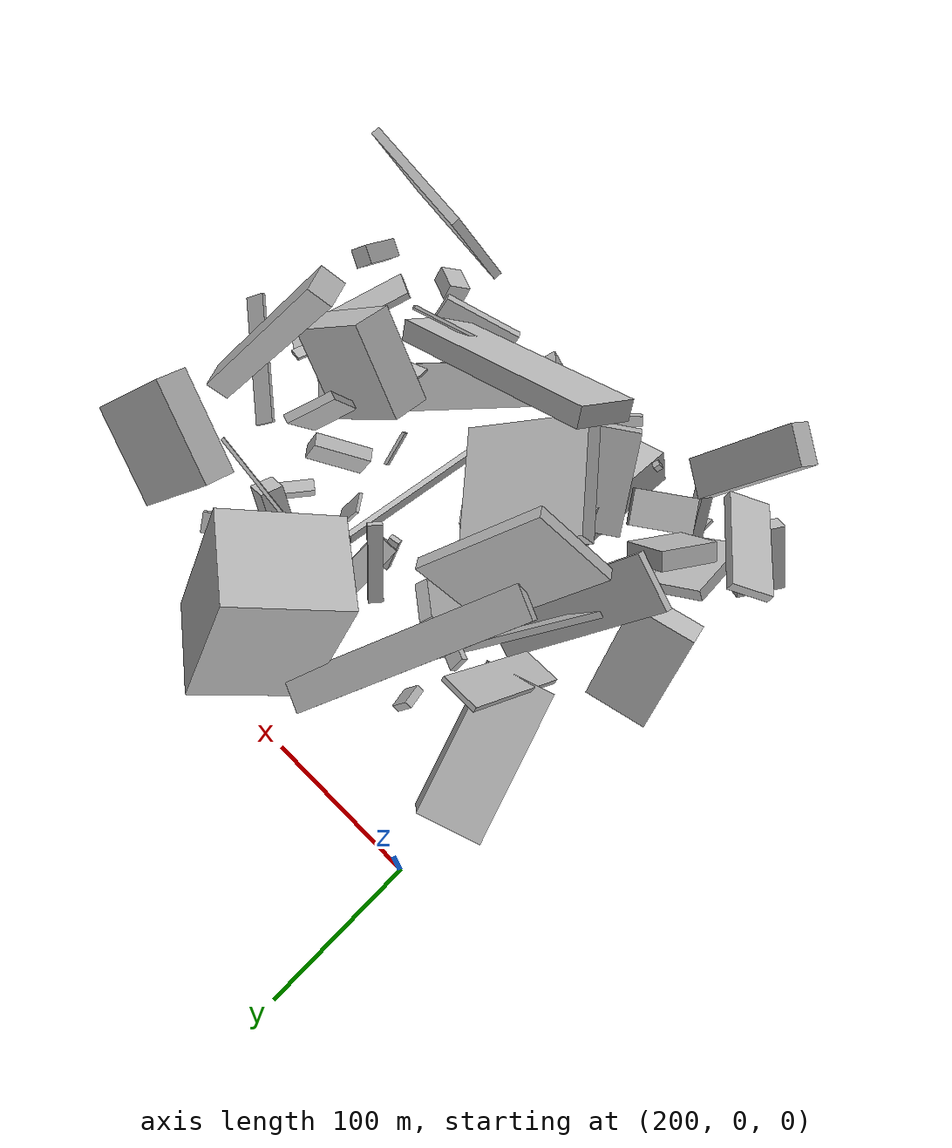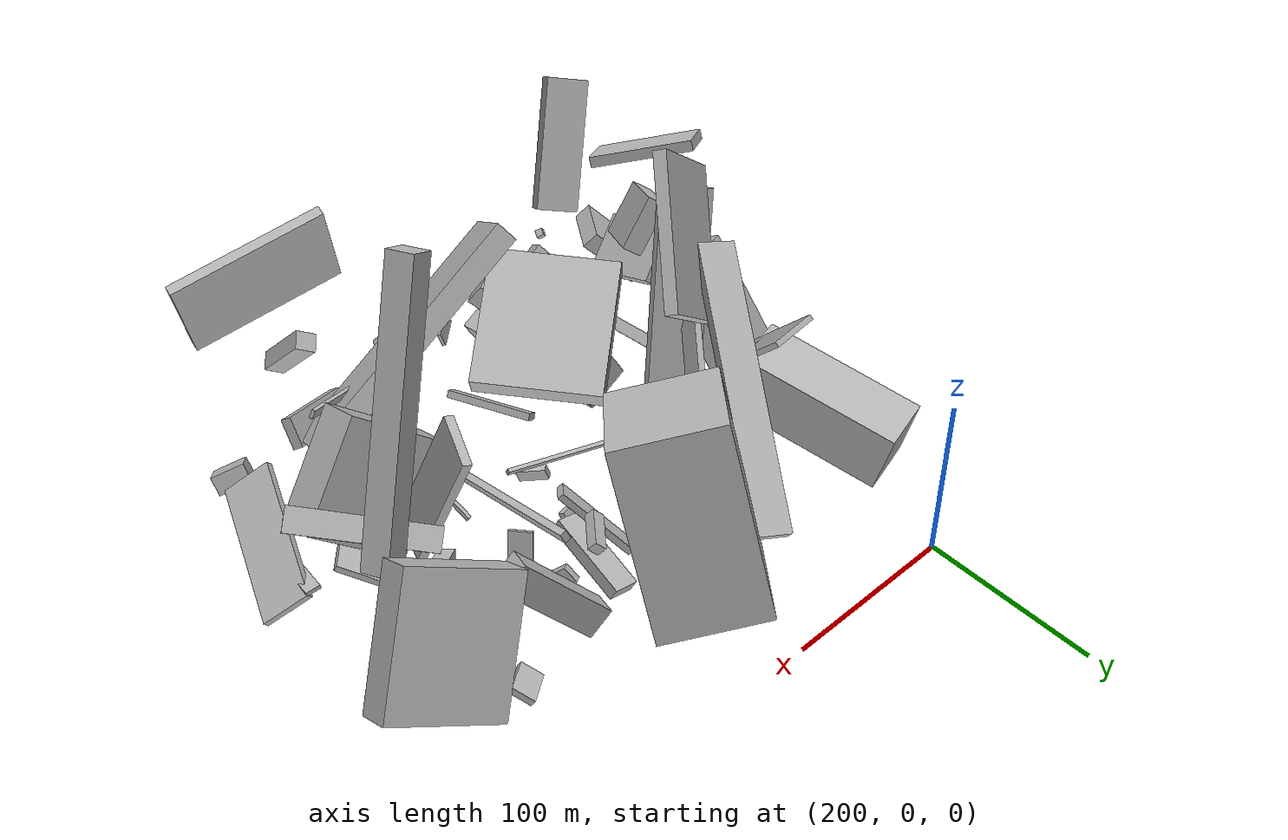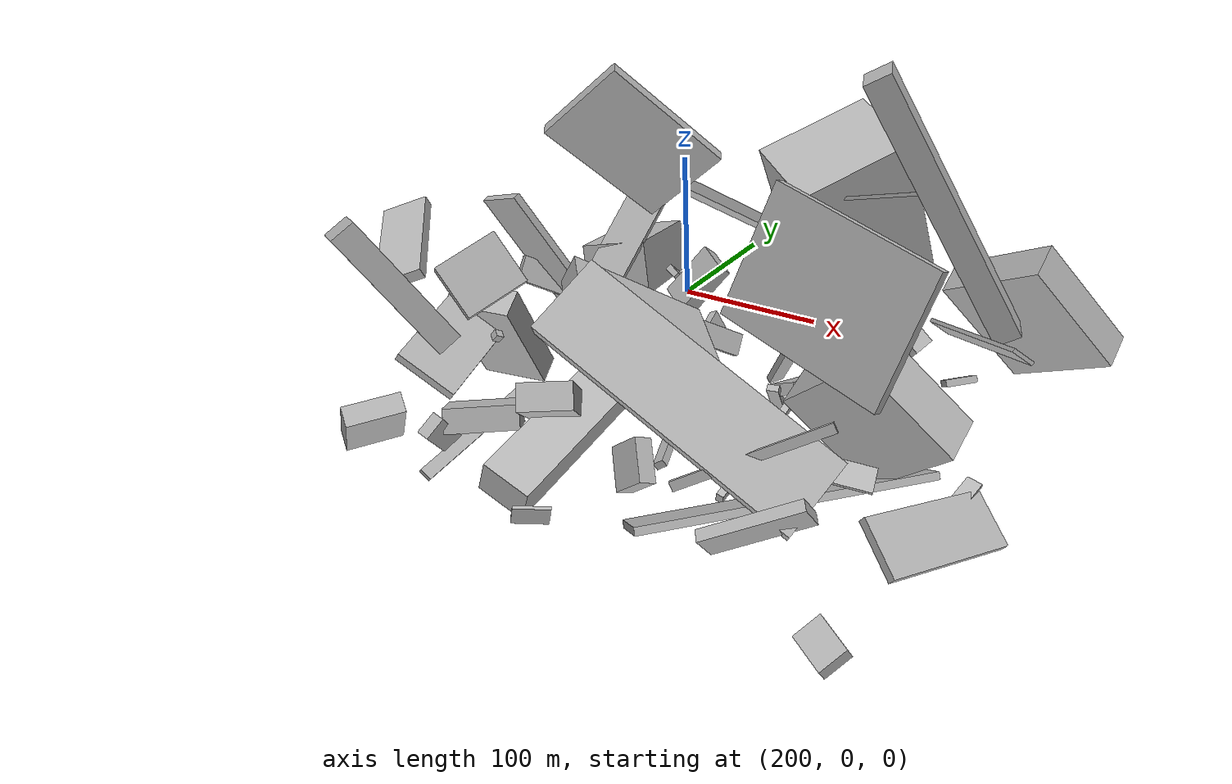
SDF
<sdf version="1.6">
 <world name="default">
  <model name="building_10">
   <static>0</static>
   <pose>460.1589038823998 -118.37427874960508 84.8922860000979 0.4953576849340349 0.12150383040471525 -1.203732286622869</pose>
   <link name="link">
    <gravity>0</gravity>
    <pose>0 0 75.0 0 0 0</pose>
    <collision name="collision"><geometry><box><size>15 14 150</size></box></geometry></collision>
    <visual name="visual">
     <cast_shadows>0</cast_shadows>
     <geometry><box><size>15 14 150</size></box></geometry>
     <material>
      <script>
       <uri>model://HANNAS_wall/materials/scripts</uri>
       <uri>model://HANNAS_wall/materials/textures</uri>
       <name>vrc/HANNAS_wall</name>
      </script>
     </material>
    </visual>
   </link>
  </model>
  <model name="building_11">
   <static>0</static>
   <pose>337.3567182355807 -128.44196132347136 14.974710355389043 -1.0140477747053518 -0.029069397226781417 0.16916619876943415</pose>
   <link name="link">
    <gravity>0</gravity>
    <pose>0 0 2.0 0 0 0</pose>
    <collision name="collision"><geometry><box><size>7 24 4</size></box></geometry></collision>
    <visual name="visual">
     <cast_shadows>0</cast_shadows>
     <geometry><box><size>7 24 4</size></box></geometry>
     <material>
      <script>
       <uri>model://HANNAS_wall/materials/scripts</uri>
       <uri>model://HANNAS_wall/materials/textures</uri>
       <name>vrc/HANNAS_wall</name>
      </script>
     </material>
    </visual>
   </link>
  </model>
  <model name="building_17">
   <static>0</static>
   <pose>434.11143040964225 -63.23655594382947 62.417099421793985 -0.8089950280004476 -0.8640775364685063 -2.533135403056775</pose>
   <link name="link">
    <gravity>0</gravity>
    <pose>0 0 31.5 0 0 0</pose>
    <collision name="collision"><geometry><box><size>71 20 63</size></box></geometry></collision>
    <visual name="visual">
     <cast_shadows>0</cast_shadows>
     <geometry><box><size>71 20 63</size></box></geometry>
     <material>
      <script>
       <uri>model://HANNAS_wall/materials/scripts</uri>
       <uri>model://HANNAS_wall/materials/textures</uri>
       <name>vrc/HANNAS_wall</name>
      </script>
     </material>
    </visual>
   </link>
  </model>
  <model name="building_20">
   <static>0</static>
   <pose>333.15024526978425 -112.29790113569715 32.963723524804394 2.294804269821696 -0.13437746674991374 0.8997554417228535</pose>
   <link name="link">
    <gravity>0</gravity>
    <pose>0 0 2.0 0 0 0</pose>
    <collision name="collision"><geometry><box><size>9 53 4</size></box></geometry></collision>
    <visual name="visual">
     <cast_shadows>0</cast_shadows>
     <geometry><box><size>9 53 4</size></box></geometry>
     <material>
      <script>
       <uri>model://HANNAS_wall/materials/scripts</uri>
       <uri>model://HANNAS_wall/materials/textures</uri>
       <name>vrc/HANNAS_wall</name>
      </script>
     </material>
    </visual>
   </link>
  </model>
  <model name="building_28">
   <static>0</static>
   <pose>235.4168713873661 -254.85683032448424 34.52441124242624 -0.36384586400319685 -0.01920707055681753 0.6055306552748823</pose>
   <link name="link">
    <gravity>0</gravity>
    <pose>0 0 6.5 0 0 0</pose>
    <collision name="collision"><geometry><box><size>38 22 13</size></box></geometry></collision>
    <visual name="visual">
     <cast_shadows>0</cast_shadows>
     <geometry><box><size>38 22 13</size></box></geometry>
     <material>
      <script>
       <uri>model://HANNAS_wall/materials/scripts</uri>
       <uri>model://HANNAS_wall/materials/textures</uri>
       <name>vrc/HANNAS_wall</name>
      </script>
     </material>
    </visual>
   </link>
  </model>
  <model name="building_31">
   <static>0</static>
   <pose>317.9822952073156 -175.98219931909975 65.68136350137047 0.08949255306956216 1.0632707284871563 -2.366867553119166</pose>
   <link name="link">
    <gravity>0</gravity>
    <pose>0 0 37.5 0 0 0</pose>
    <collision name="collision"><geometry><box><size>16 70 75</size></box></geometry></collision>
    <visual name="visual">
     <cast_shadows>0</cast_shadows>
     <geometry><box><size>16 70 75</size></box></geometry>
     <material>
      <script>
       <uri>model://HANNAS_wall/materials/scripts</uri>
       <uri>model://HANNAS_wall/materials/textures</uri>
       <name>vrc/HANNAS_wall</name>
      </script>
     </material>
    </visual>
   </link>
  </model>
  <model name="building_35">
   <static>0</static>
   <pose>211.60376427736364 -220.27905017314177 101.85397670175263 2.5157299335138896 -0.8857009079345143 -3.1245915232860106</pose>
   <link name="link">
    <gravity>0</gravity>
    <pose>0 0 5.5 0 0 0</pose>
    <collision name="collision"><geometry><box><size>31 36 11</size></box></geometry></collision>
    <visual name="visual">
     <cast_shadows>0</cast_shadows>
     <geometry><box><size>31 36 11</size></box></geometry>
     <material>
      <script>
       <uri>model://HANNAS_wall/materials/scripts</uri>
       <uri>model://HANNAS_wall/materials/textures</uri>
       <name>vrc/HANNAS_wall</name>
      </script>
     </material>
    </visual>
   </link>
  </model>
  <model name="building_38">
   <static>0</static>
   <pose>350.74937876614905 -162.99741595947287 20.990769054794832 1.8768345951856005 -0.2834568657458699 1.5121940201019815</pose>
   <link name="link">
    <gravity>0</gravity>
    <pose>0 0 2.0 0 0 0</pose>
    <collision name="collision"><geometry><box><size>106 6 4</size></box></geometry></collision>
    <visual name="visual">
     <cast_shadows>0</cast_shadows>
     <geometry><box><size>106 6 4</size></box></geometry>
     <material>
      <script>
       <uri>model://HANNAS_wall/materials/scripts</uri>
       <uri>model://HANNAS_wall/materials/textures</uri>
       <name>vrc/HANNAS_wall</name>
      </script>
     </material>
    </visual>
   </link>
  </model>
  <model name="building_43">
   <static>0</static>
   <pose>355.7081413751066 -226.23785685120248 91.65332476563502 -2.2603713731433333 -0.4976184332705186 -3.1124423480379075</pose>
   <link name="link">
    <gravity>0</gravity>
    <pose>0 0 21.0 0 0 0</pose>
    <collision name="collision"><geometry><box><size>150 13 42</size></box></geometry></collision>
    <visual name="visual">
     <cast_shadows>0</cast_shadows>
     <geometry><box><size>150 13 42</size></box></geometry>
     <material>
      <script>
       <uri>model://HANNAS_wall/materials/scripts</uri>
       <uri>model://HANNAS_wall/materials/textures</uri>
       <name>vrc/HANNAS_wall</name>
      </script>
     </material>
    </visual>
   </link>
  </model>
  <model name="building_47">
   <static>0</static>
   <pose>215.18493710199056 -271.1913612932907 27.47882116841408 0.8415555651585404 -0.47683476521809753 -3.0370207028058096</pose>
   <link name="link">
    <gravity>0</gravity>
    <pose>0 0 6.0 0 0 0</pose>
    <collision name="collision"><geometry><box><size>6 56 12</size></box></geometry></collision>
    <visual name="visual">
     <cast_shadows>0</cast_shadows>
     <geometry><box><size>6 56 12</size></box></geometry>
     <material>
      <script>
       <uri>model://HANNAS_wall/materials/scripts</uri>
       <uri>model://HANNAS_wall/materials/textures</uri>
       <name>vrc/HANNAS_wall</name>
      </script>
     </material>
    </visual>
   </link>
  </model>
  <model name="building_48">
   <static>0</static>
   <pose>212.4891290769429 -77.7635215359557 41.445633553725614 -0.2246477361260205 -0.1491714450515656 0.3354588442186512</pose>
   <link name="link">
    <gravity>0</gravity>
    <pose>0 0 16.0 0 0 0</pose>
    <collision name="collision"><geometry><box><size>38 89 32</size></box></geometry></collision>
    <visual name="visual">
     <cast_shadows>0</cast_shadows>
     <geometry><box><size>38 89 32</size></box></geometry>
     <material>
      <script>
       <uri>model://HANNAS_wall/materials/scripts</uri>
       <uri>model://HANNAS_wall/materials/textures</uri>
       <name>vrc/HANNAS_wall</name>
      </script>
     </material>
    </visual>
   </link>
  </model>
  <model name="building_49">
   <static>0</static>
   <pose>245.2291191876191 -126.56439494210305 57.91796113523763 -2.68325481329737 -0.5180728698786812 -2.243137083573296</pose>
   <link name="link">
    <gravity>0</gravity>
    <pose>0 0 7.0 0 0 0</pose>
    <collision name="collision"><geometry><box><size>150 4 14</size></box></geometry></collision>
    <visual name="visual">
     <cast_shadows>0</cast_shadows>
     <geometry><box><size>150 4 14</size></box></geometry>
     <material>
      <script>
       <uri>model://HANNAS_wall/materials/scripts</uri>
       <uri>model://HANNAS_wall/materials/textures</uri>
       <name>vrc/HANNAS_wall</name>
      </script>
     </material>
    </visual>
   </link>
  </model>
  <model name="building_50">
   <static>0</static>
   <pose>247.29898616097603 -253.99254294254627 90.68106334943234 -2.4298114748262445 -0.8616706706315591 0.3567352662043618</pose>
   <link name="link">
    <gravity>0</gravity>
    <pose>0 0 2.0 0 0 0</pose>
    <collision name="collision"><geometry><box><size>4 4 4</size></box></geometry></collision>
    <visual name="visual">
     <cast_shadows>0</cast_shadows>
     <geometry><box><size>4 4 4</size></box></geometry>
     <material>
      <script>
       <uri>model://HANNAS_wall/materials/scripts</uri>
       <uri>model://HANNAS_wall/materials/textures</uri>
       <name>vrc/HANNAS_wall</name>
      </script>
     </material>
    </visual>
   </link>
  </model>
  <model name="building_52">
   <static>0</static>
   <pose>318.7343422818073 -66.29008827937255 88.95688643740255 0.5230986797730359 1.1464093705336198 1.410003238743652</pose>
   <link name="link">
    <gravity>0</gravity>
    <pose>0 0 34.5 0 0 0</pose>
    <collision name="collision"><geometry><box><size>99 56 69</size></box></geometry></collision>
    <visual name="visual">
     <cast_shadows>0</cast_shadows>
     <geometry><box><size>99 56 69</size></box></geometry>
     <material>
      <script>
       <uri>model://HANNAS_wall/materials/scripts</uri>
       <uri>model://HANNAS_wall/materials/textures</uri>
       <name>vrc/HANNAS_wall</name>
      </script>
     </material>
    </visual>
   </link>
  </model>
  <model name="building_61">
   <static>0</static>
   <pose>200.9102274237913 -173.73302068580915 40.64430081645144 1.5047500270799214 -1.0065464622510234 -1.307111812371574</pose>
   <link name="link">
    <gravity>0</gravity>
    <pose>0 0 19.5 0 0 0</pose>
    <collision name="collision"><geometry><box><size>75 16 39</size></box></geometry></collision>
    <visual name="visual">
     <cast_shadows>0</cast_shadows>
     <geometry><box><size>75 16 39</size></box></geometry>
     <material>
      <script>
       <uri>model://HANNAS_wall/materials/scripts</uri>
       <uri>model://HANNAS_wall/materials/textures</uri>
       <name>vrc/HANNAS_wall</name>
      </script>
     </material>
    </visual>
   </link>
  </model>
  <model name="building_62">
   <static>0</static>
   <pose>442.2098358875446 -193.98515217330163 83.47265686796575 2.6938296307254874 -0.7813027499943849 -2.8380350246862163</pose>
   <link name="link">
    <gravity>0</gravity>
    <pose>0 0 30.0 0 0 0</pose>
    <collision name="collision"><geometry><box><size>62 25 60</size></box></geometry></collision>
    <visual name="visual">
     <cast_shadows>0</cast_shadows>
     <geometry><box><size>62 25 60</size></box></geometry>
     <material>
      <script>
       <uri>model://HANNAS_wall/materials/scripts</uri>
       <uri>model://HANNAS_wall/materials/textures</uri>
       <name>vrc/HANNAS_wall</name>
      </script>
     </material>
    </visual>
   </link>
  </model>
  <model name="building_77">
   <static>0</static>
   <pose>280.5271361039097 -229.9597543300415 26.435822574598006 -0.46021683123233476 1.0820189600171166 2.6968286004133035</pose>
   <link name="link">
    <gravity>0</gravity>
    <pose>0 0 13.5 0 0 0</pose>
    <collision name="collision"><geometry><box><size>22 101 27</size></box></geometry></collision>
    <visual name="visual">
     <cast_shadows>0</cast_shadows>
     <geometry><box><size>22 101 27</size></box></geometry>
     <material>
      <script>
       <uri>model://HANNAS_wall/materials/scripts</uri>
       <uri>model://HANNAS_wall/materials/textures</uri>
       <name>vrc/HANNAS_wall</name>
      </script>
     </material>
    </visual>
   </link>
  </model>
  <model name="building_84">
   <static>0</static>
   <pose>244.34190300198725 -168.36143782823825 71.7766488303553 2.21729381559508 -1.047114802332166 -2.452151538049546</pose>
   <link name="link">
    <gravity>0</gravity>
    <pose>0 0 16.5 0 0 0</pose>
    <collision name="collision"><geometry><box><size>150 4 33</size></box></geometry></collision>
    <visual name="visual">
     <cast_shadows>0</cast_shadows>
     <geometry><box><size>150 4 33</size></box></geometry>
     <material>
      <script>
       <uri>model://HANNAS_wall/materials/scripts</uri>
       <uri>model://HANNAS_wall/materials/textures</uri>
       <name>vrc/HANNAS_wall</name>
      </script>
     </material>
    </visual>
   </link>
  </model>
  <model name="building_89">
   <static>0</static>
   <pose>260.725664843806 -72.84100023236724 104.545054607556 -1.3204204983094419 -0.5610882045661703 -2.118408202622135</pose>
   <link name="link">
    <gravity>0</gravity>
    <pose>0 0 10.0 0 0 0</pose>
    <collision name="collision"><geometry><box><size>150 6 20</size></box></geometry></collision>
    <visual name="visual">
     <cast_shadows>0</cast_shadows>
     <geometry><box><size>150 6 20</size></box></geometry>
     <material>
      <script>
       <uri>model://HANNAS_wall/materials/scripts</uri>
       <uri>model://HANNAS_wall/materials/textures</uri>
       <name>vrc/HANNAS_wall</name>
      </script>
     </material>
    </visual>
   </link>
  </model>
  <model name="building_92">
   <static>0</static>
   <pose>320.22706287352025 -212.35248156447483 36.90239027115036 2.5389613801580104 -0.1098347615020814 1.8934259265785665</pose>
   <link name="link">
    <gravity>0</gravity>
    <pose>0 0 2.0 0 0 0</pose>
    <collision name="collision"><geometry><box><size>52 6 4</size></box></geometry></collision>
    <visual name="visual">
     <cast_shadows>0</cast_shadows>
     <geometry><box><size>52 6 4</size></box></geometry>
     <material>
      <script>
       <uri>model://HANNAS_wall/materials/scripts</uri>
       <uri>model://HANNAS_wall/materials/textures</uri>
       <name>vrc/HANNAS_wall</name>
      </script>
     </material>
    </visual>
   </link>
  </model>
  <model name="building_99">
   <static>0</static>
   <pose>380.911453621354 -214.32253185496637 18.43099594032138 1.0690812252482276 0.00394586074833387 0.817220577300553</pose>
   <link name="link">
    <gravity>0</gravity>
    <pose>0 0 14.5 0 0 0</pose>
    <collision name="collision"><geometry><box><size>150 4 29</size></box></geometry></collision>
    <visual name="visual">
     <cast_shadows>0</cast_shadows>
     <geometry><box><size>150 4 29</size></box></geometry>
     <material>
      <script>
       <uri>model://HANNAS_wall/materials/scripts</uri>
       <uri>model://HANNAS_wall/materials/textures</uri>
       <name>vrc/HANNAS_wall</name>
      </script>
     </material>
    </visual>
   </link>
  </model>
  <model name="building_101">
   <static>0</static>
   <pose>208.93288259155446 -228.6883443920047 50.87617227311907 0.5088292097565456 -0.8053347149819384 -0.32761566895497757</pose>
   <link name="link">
    <gravity>0</gravity>
    <pose>0 0 17.5 0 0 0</pose>
    <collision name="collision"><geometry><box><size>7 46 35</size></box></geometry></collision>
    <visual name="visual">
     <cast_shadows>0</cast_shadows>
     <geometry><box><size>7 46 35</size></box></geometry>
     <material>
      <script>
       <uri>model://HANNAS_wall/materials/scripts</uri>
       <uri>model://HANNAS_wall/materials/textures</uri>
       <name>vrc/HANNAS_wall</name>
      </script>
     </material>
    </visual>
   </link>
  </model>
  <model name="building_109">
   <static>0</static>
   <pose>373.3770741221309 -127.4637251876629 18.6794212886369 1.9851911082569653 0.07983012994358722 -0.9564743889754774</pose>
   <link name="link">
    <gravity>0</gravity>
    <pose>0 0 1.0 0 0 0</pose>
    <collision name="collision"><geometry><box><size>13 32 2</size></box></geometry></collision>
    <visual name="visual">
     <cast_shadows>0</cast_shadows>
     <geometry><box><size>13 32 2</size></box></geometry>
     <material>
      <script>
       <uri>model://HANNAS_wall/materials/scripts</uri>
       <uri>model://HANNAS_wall/materials/textures</uri>
       <name>vrc/HANNAS_wall</name>
      </script>
     </material>
    </visual>
   </link>
  </model>
  <model name="building_110">
   <static>0</static>
   <pose>189.3494798930816 -233.90068318987755 123.8378949537716 -2.413807583799854 1.1196567251162641 1.3497812016183395</pose>
   <link name="link">
    <gravity>0</gravity>
    <pose>0 0 12.0 0 0 0</pose>
    <collision name="collision"><geometry><box><size>6 59 24</size></box></geometry></collision>
    <visual name="visual">
     <cast_shadows>0</cast_shadows>
     <geometry><box><size>6 59 24</size></box></geometry>
     <material>
      <script>
       <uri>model://HANNAS_wall/materials/scripts</uri>
       <uri>model://HANNAS_wall/materials/textures</uri>
       <name>vrc/HANNAS_wall</name>
      </script>
     </material>
    </visual>
   </link>
  </model>
  <model name="building_117">
   <static>0</static>
   <pose>410.1704699382176 -85.08262220811868 139.7395193428975 1.8405389211374017 -0.21448771616415635 -1.72395791164219</pose>
   <link name="link">
    <gravity>0</gravity>
    <pose>0 0 40.0 0 0 0</pose>
    <collision name="collision"><geometry><box><size>2 2 80</size></box></geometry></collision>
    <visual name="visual">
     <cast_shadows>0</cast_shadows>
     <geometry><box><size>2 2 80</size></box></geometry>
     <material>
      <script>
       <uri>model://HANNAS_wall/materials/scripts</uri>
       <uri>model://HANNAS_wall/materials/textures</uri>
       <name>vrc/HANNAS_wall</name>
      </script>
     </material>
    </visual>
   </link>
  </model>
  <model name="building_125">
   <static>0</static>
   <pose>291.0878081388329 -288.7931266781011 23.455761138645848 -2.468119949734481 1.296719110242469 2.92131677258619</pose>
   <link name="link">
    <gravity>0</gravity>
    <pose>0 0 1.0 0 0 0</pose>
    <collision name="collision"><geometry><box><size>10 18 2</size></box></geometry></collision>
    <visual name="visual">
     <cast_shadows>0</cast_shadows>
     <geometry><box><size>10 18 2</size></box></geometry>
     <material>
      <script>
       <uri>model://HANNAS_wall/materials/scripts</uri>
       <uri>model://HANNAS_wall/materials/textures</uri>
       <name>vrc/HANNAS_wall</name>
      </script>
     </material>
    </visual>
   </link>
  </model>
  <model name="building_136">
   <static>0</static>
   <pose>449.2815757519602 -252.64814022709473 38.86930768673807 1.9775527400731718 0.8932343174269934 3.080754585479773</pose>
   <link name="link">
    <gravity>0</gravity>
    <pose>0 0 40.0 0 0 0</pose>
    <collision name="collision"><geometry><box><size>4 29 80</size></box></geometry></collision>
    <visual name="visual">
     <cast_shadows>0</cast_shadows>
     <geometry><box><size>4 29 80</size></box></geometry>
     <material>
      <script>
       <uri>model://HANNAS_wall/materials/scripts</uri>
       <uri>model://HANNAS_wall/materials/textures</uri>
       <name>vrc/HANNAS_wall</name>
      </script>
     </material>
    </visual>
   </link>
  </model>
  <model name="building_140">
   <static>0</static>
   <pose>225.14962807315837 -102.90028612967566 89.05644045869357 0.29493797088226326 -0.839328732036599 1.3148853432662513</pose>
   <link name="link">
    <gravity>0</gravity>
    <pose>0 0 1.5 0 0 0</pose>
    <collision name="collision"><geometry><box><size>80 24 3</size></box></geometry></collision>
    <visual name="visual">
     <cast_shadows>0</cast_shadows>
     <geometry><box><size>80 24 3</size></box></geometry>
     <material>
      <script>
       <uri>model://HANNAS_wall/materials/scripts</uri>
       <uri>model://HANNAS_wall/materials/textures</uri>
       <name>vrc/HANNAS_wall</name>
      </script>
     </material>
    </visual>
   </link>
  </model>
  <model name="building_146">
   <static>0</static>
   <pose>414.73256315072655 -264.1627639766887 126.25105230959478 -0.2188273654402538 -0.34099935820905325 -1.7172369734844972</pose>
   <link name="link">
    <gravity>0</gravity>
    <pose>0 0 30.0 0 0 0</pose>
    <collision name="collision"><geometry><box><size>5 80 60</size></box></geometry></collision>
    <visual name="visual">
     <cast_shadows>0</cast_shadows>
     <geometry><box><size>5 80 60</size></box></geometry>
     <material>
      <script>
       <uri>model://HANNAS_wall/materials/scripts</uri>
       <uri>model://HANNAS_wall/materials/textures</uri>
       <name>vrc/HANNAS_wall</name>
      </script>
     </material>
    </visual>
   </link>
  </model>
  <model name="building_147">
   <static>0</static>
   <pose>405.4929641702719 -154.5167294639753 18.57505729771713 -2.735737354694274 0.10841578608229505 -0.8840340368185594</pose>
   <link name="link">
    <gravity>0</gravity>
    <pose>0 0 9.5 0 0 0</pose>
    <collision name="collision"><geometry><box><size>9 37 19</size></box></geometry></collision>
    <visual name="visual">
     <cast_shadows>0</cast_shadows>
     <geometry><box><size>9 37 19</size></box></geometry>
     <material>
      <script>
       <uri>model://HANNAS_wall/materials/scripts</uri>
       <uri>model://HANNAS_wall/materials/textures</uri>
       <name>vrc/HANNAS_wall</name>
      </script>
     </material>
    </visual>
   </link>
  </model>
  <model name="building_152">
   <static>0</static>
   <pose>287.2871676406291 -121.6690813711336 69.24595631852546 -1.3652841876755313 0.7134322438633618 1.0393939513840176</pose>
   <link name="link">
    <gravity>0</gravity>
    <pose>0 0 11.5 0 0 0</pose>
    <collision name="collision"><geometry><box><size>9 34 23</size></box></geometry></collision>
    <visual name="visual">
     <cast_shadows>0</cast_shadows>
     <geometry><box><size>9 34 23</size></box></geometry>
     <material>
      <script>
       <uri>model://HANNAS_wall/materials/scripts</uri>
       <uri>model://HANNAS_wall/materials/textures</uri>
       <name>vrc/HANNAS_wall</name>
      </script>
     </material>
    </visual>
   </link>
  </model>
  <model name="building_153">
   <static>0</static>
   <pose>279.5868036140089 -223.26594215084552 86.36456683612614 -2.7239069145814025 0.7763298759437856 -2.636738384228357</pose>
   <link name="link">
    <gravity>0</gravity>
    <pose>0 0 5.0 0 0 0</pose>
    <collision name="collision"><geometry><box><size>12 15 10</size></box></geometry></collision>
    <visual name="visual">
     <cast_shadows>0</cast_shadows>
     <geometry><box><size>12 15 10</size></box></geometry>
     <material>
      <script>
       <uri>model://HANNAS_wall/materials/scripts</uri>
       <uri>model://HANNAS_wall/materials/textures</uri>
       <name>vrc/HANNAS_wall</name>
      </script>
     </material>
    </visual>
   </link>
  </model>
  <model name="building_156">
   <static>0</static>
   <pose>267.6418408713831 -70.91517537222309 18.346345175938712 1.9709376357255821 0.19784956948103993 -1.3757708798279347</pose>
   <link name="link">
    <gravity>0</gravity>
    <pose>0 0 2.5 0 0 0</pose>
    <collision name="collision"><geometry><box><size>13 19 5</size></box></geometry></collision>
    <visual name="visual">
     <cast_shadows>0</cast_shadows>
     <geometry><box><size>13 19 5</size></box></geometry>
     <material>
      <script>
       <uri>model://HANNAS_wall/materials/scripts</uri>
       <uri>model://HANNAS_wall/materials/textures</uri>
       <name>vrc/HANNAS_wall</name>
      </script>
     </material>
    </visual>
   </link>
  </model>
  <model name="building_158">
   <static>0</static>
   <pose>329.81868289927615 -267.89528603912163 48.512691341317804 -0.5780775207685969 0.7541461604437004 -0.8692349804844707</pose>
   <link name="link">
    <gravity>0</gravity>
    <pose>0 0 9.0 0 0 0</pose>
    <collision name="collision"><geometry><box><size>21 9 18</size></box></geometry></collision>
    <visual name="visual">
     <cast_shadows>0</cast_shadows>
     <geometry><box><size>21 9 18</size></box></geometry>
     <material>
      <script>
       <uri>model://HANNAS_wall/materials/scripts</uri>
       <uri>model://HANNAS_wall/materials/textures</uri>
       <name>vrc/HANNAS_wall</name>
      </script>
     </material>
    </visual>
   </link>
  </model>
  <model name="building_166">
   <static>0</static>
   <pose>232.45141431393952 -141.18465936207 137.83967684268134 -0.45809020107708237 -0.7491240944061937 -2.229161635064339</pose>
   <link name="link">
    <gravity>0</gravity>
    <pose>0 0 27.0 0 0 0</pose>
    <collision name="collision"><geometry><box><size>80 7 54</size></box></geometry></collision>
    <visual name="visual">
     <cast_shadows>0</cast_shadows>
     <geometry><box><size>80 7 54</size></box></geometry>
     <material>
      <script>
       <uri>model://HANNAS_wall/materials/scripts</uri>
       <uri>model://HANNAS_wall/materials/textures</uri>
       <name>vrc/HANNAS_wall</name>
      </script>
     </material>
    </visual>
   </link>
  </model>
  <model name="building_176">
   <static>0</static>
   <pose>353.912015487791 -264.39546690677946 45.61929384404063 -1.1295302715417508 -0.24631573228398373 -1.2104357430718784</pose>
   <link name="link">
    <gravity>0</gravity>
    <pose>0 0 40.0 0 0 0</pose>
    <collision name="collision"><geometry><box><size>2 5 80</size></box></geometry></collision>
    <visual name="visual">
     <cast_shadows>0</cast_shadows>
     <geometry><box><size>2 5 80</size></box></geometry>
     <material>
      <script>
       <uri>model://HANNAS_wall/materials/scripts</uri>
       <uri>model://HANNAS_wall/materials/textures</uri>
       <name>vrc/HANNAS_wall</name>
      </script>
     </material>
    </visual>
   </link>
  </model>
  <model name="building_182">
   <static>0</static>
   <pose>384.757821133791 -93.32251795567214 35.792251811439044 1.3199742497294986 -0.6986104676257516 3.039856276194207</pose>
   <link name="link">
    <gravity>0</gravity>
    <pose>0 0 7.0 0 0 0</pose>
    <collision name="collision"><geometry><box><size>17 62 14</size></box></geometry></collision>
    <visual name="visual">
     <cast_shadows>0</cast_shadows>
     <geometry><box><size>17 62 14</size></box></geometry>
     <material>
      <script>
       <uri>model://HANNAS_wall/materials/scripts</uri>
       <uri>model://HANNAS_wall/materials/textures</uri>
       <name>vrc/HANNAS_wall</name>
      </script>
     </material>
    </visual>
   </link>
  </model>
  <model name="building_186">
   <static>0</static>
   <pose>266.58747893749165 -237.49479715576445 58.50452231603069 2.527397417235398 -0.005324374064252108 0.5818382885486832</pose>
   <link name="link">
    <gravity>0</gravity>
    <pose>0 0 7.0 0 0 0</pose>
    <collision name="collision"><geometry><box><size>27 63 14</size></box></geometry></collision>
    <visual name="visual">
     <cast_shadows>0</cast_shadows>
     <geometry><box><size>27 63 14</size></box></geometry>
     <material>
      <script>
       <uri>model://HANNAS_wall/materials/scripts</uri>
       <uri>model://HANNAS_wall/materials/textures</uri>
       <name>vrc/HANNAS_wall</name>
      </script>
     </material>
    </visual>
   </link>
  </model>
  <model name="building_188">
   <static>0</static>
   <pose>352.3148130261338 -89.56056580248385 52.18562549907406 0.800385976160919 0.036525562152169996 0.8944927806602351</pose>
   <link name="link">
    <gravity>0</gravity>
    <pose>0 0 3.5 0 0 0</pose>
    <collision name="collision"><geometry><box><size>22 6 7</size></box></geometry></collision>
    <visual name="visual">
     <cast_shadows>0</cast_shadows>
     <geometry><box><size>22 6 7</size></box></geometry>
     <material>
      <script>
       <uri>model://HANNAS_wall/materials/scripts</uri>
       <uri>model://HANNAS_wall/materials/textures</uri>
       <name>vrc/HANNAS_wall</name>
      </script>
     </material>
    </visual>
   </link>
  </model>
  <model name="building_199">
   <static>0</static>
   <pose>225.98741351184913 -265.30427694292723 87.37741415822177 -0.5568529490042251 0.2199550169626228 2.5614939123412315</pose>
   <link name="link">
    <gravity>0</gravity>
    <pose>0 0 36.5 0 0 0</pose>
    <collision name="collision"><geometry><box><size>23 13 73</size></box></geometry></collision>
    <visual name="visual">
     <cast_shadows>0</cast_shadows>
     <geometry><box><size>23 13 73</size></box></geometry>
     <material>
      <script>
       <uri>model://HANNAS_wall/materials/scripts</uri>
       <uri>model://HANNAS_wall/materials/textures</uri>
       <name>vrc/HANNAS_wall</name>
      </script>
     </material>
    </visual>
   </link>
  </model>
  <model name="building_203">
   <static>0</static>
   <pose>444.98041982905164 -281.0155998135211 12.676293733304997 -2.1201341763396915 -0.3078308564666747 2.684431427243636</pose>
   <link name="link">
    <gravity>0</gravity>
    <pose>0 0 7.5 0 0 0</pose>
    <collision name="collision"><geometry><box><size>19 11 15</size></box></geometry></collision>
    <visual name="visual">
     <cast_shadows>0</cast_shadows>
     <geometry><box><size>19 11 15</size></box></geometry>
     <material>
      <script>
       <uri>model://HANNAS_wall/materials/scripts</uri>
       <uri>model://HANNAS_wall/materials/textures</uri>
       <name>vrc/HANNAS_wall</name>
      </script>
     </material>
    </visual>
   </link>
  </model>
  <model name="building_213">
   <static>0</static>
   <pose>414.0235066203342 -215.71159243192452 37.63064805315756 1.0290724206506887 -0.14562475175916942 -2.856353176489603</pose>
   <link name="link">
    <gravity>0</gravity>
    <pose>0 0 6.5 0 0 0</pose>
    <collision name="collision"><geometry><box><size>34 2 13</size></box></geometry></collision>
    <visual name="visual">
     <cast_shadows>0</cast_shadows>
     <geometry><box><size>34 2 13</size></box></geometry>
     <material>
      <script>
       <uri>model://HANNAS_wall/materials/scripts</uri>
       <uri>model://HANNAS_wall/materials/textures</uri>
       <name>vrc/HANNAS_wall</name>
      </script>
     </material>
    </visual>
   </link>
  </model>
  <model name="building_225">
   <static>0</static>
   <pose>327.65888566979197 -183.63507281361268 7.703247428624127 -0.5183740473696631 -1.2722524248183096 -0.3845627458115768</pose>
   <link name="link">
    <gravity>0</gravity>
    <pose>0 0 8.5 0 0 0</pose>
    <collision name="collision"><geometry><box><size>8 4 17</size></box></geometry></collision>
    <visual name="visual">
     <cast_shadows>0</cast_shadows>
     <geometry><box><size>8 4 17</size></box></geometry>
     <material>
      <script>
       <uri>model://HANNAS_wall/materials/scripts</uri>
       <uri>model://HANNAS_wall/materials/textures</uri>
       <name>vrc/HANNAS_wall</name>
      </script>
     </material>
    </visual>
   </link>
  </model>
  <model name="building_226">
   <static>0</static>
   <pose>366.7769026242431 -104.30438031781568 17.848444811332563 1.7270425938182346 0.72181893465127 -0.9281871619327985</pose>
   <link name="link">
    <gravity>0</gravity>
    <pose>0 0 2.0 0 0 0</pose>
    <collision name="collision"><geometry><box><size>14 10 4</size></box></geometry></collision>
    <visual name="visual">
     <cast_shadows>0</cast_shadows>
     <geometry><box><size>14 10 4</size></box></geometry>
     <material>
      <script>
       <uri>model://HANNAS_wall/materials/scripts</uri>
       <uri>model://HANNAS_wall/materials/textures</uri>
       <name>vrc/HANNAS_wall</name>
      </script>
     </material>
    </visual>
   </link>
  </model>
  <model name="building_229">
   <static>0</static>
   <pose>452.97913793833214 -141.03205694023018 90.38858818394006 2.4569927567856866 -0.25007572058317135 -0.7058262473563519</pose>
   <link name="link">
    <gravity>0</gravity>
    <pose>0 0 1.0 0 0 0</pose>
    <collision name="collision"><geometry><box><size>74 13 2</size></box></geometry></collision>
    <visual name="visual">
     <cast_shadows>0</cast_shadows>
     <geometry><box><size>74 13 2</size></box></geometry>
     <material>
      <script>
       <uri>model://HANNAS_wall/materials/scripts</uri>
       <uri>model://HANNAS_wall/materials/textures</uri>
       <name>vrc/HANNAS_wall</name>
      </script>
     </material>
    </visual>
   </link>
  </model>
  <model name="building_234">
   <static>0</static>
   <pose>340.8418429054259 -105.1943444858481 19.264838863899833 2.792132976253709 -0.33159840046250694 0.08015323108325796</pose>
   <link name="link">
    <gravity>0</gravity>
    <pose>0 0 3.5 0 0 0</pose>
    <collision name="collision"><geometry><box><size>16 48 7</size></box></geometry></collision>
    <visual name="visual">
     <cast_shadows>0</cast_shadows>
     <geometry><box><size>16 48 7</size></box></geometry>
     <material>
      <script>
       <uri>model://HANNAS_wall/materials/scripts</uri>
       <uri>model://HANNAS_wall/materials/textures</uri>
       <name>vrc/HANNAS_wall</name>
      </script>
     </material>
    </visual>
   </link>
  </model>
  <model name="building_244">
   <static>0</static>
   <pose>184.057301446779 -261.8656603597269 31.117826793168895 1.6128109636417747 0.751344803649481 -0.5464305357651094</pose>
   <link name="link">
    <gravity>0</gravity>
    <pose>0 0 15.0 0 0 0</pose>
    <collision name="collision"><geometry><box><size>11 42 30</size></box></geometry></collision>
    <visual name="visual">
     <cast_shadows>0</cast_shadows>
     <geometry><box><size>11 42 30</size></box></geometry>
     <material>
      <script>
       <uri>model://HANNAS_wall/materials/scripts</uri>
       <uri>model://HANNAS_wall/materials/textures</uri>
       <name>vrc/HANNAS_wall</name>
      </script>
     </material>
    </visual>
   </link>
  </model>
  <model name="building_245">
   <static>0</static>
   <pose>250.6480125715365 -98.04479171288634 65.65338031656685 -1.9444874042504914 0.7388126562471682 -2.2685717448580967</pose>
   <link name="link">
    <gravity>0</gravity>
    <pose>0 0 4.5 0 0 0</pose>
    <collision name="collision"><geometry><box><size>4 11 9</size></box></geometry></collision>
    <visual name="visual">
     <cast_shadows>0</cast_shadows>
     <geometry><box><size>4 11 9</size></box></geometry>
     <material>
      <script>
       <uri>model://HANNAS_wall/materials/scripts</uri>
       <uri>model://HANNAS_wall/materials/textures</uri>
       <name>vrc/HANNAS_wall</name>
      </script>
     </material>
    </visual>
   </link>
  </model>
  <model name="building_252">
   <static>0</static>
   <pose>412.98745475593057 -133.1493566281406 77.38719560837505 -0.8981030356758463 -1.2008231232389395 2.1179097975220187</pose>
   <link name="link">
    <gravity>0</gravity>
    <pose>0 0 14.5 0 0 0</pose>
    <collision name="collision"><geometry><box><size>79 5 29</size></box></geometry></collision>
    <visual name="visual">
     <cast_shadows>0</cast_shadows>
     <geometry><box><size>79 5 29</size></box></geometry>
     <material>
      <script>
       <uri>model://HANNAS_wall/materials/scripts</uri>
       <uri>model://HANNAS_wall/materials/textures</uri>
       <name>vrc/HANNAS_wall</name>
      </script>
     </material>
    </visual>
   </link>
  </model>
  <model name="building_256">
   <static>0</static>
   <pose>216.15576845508437 -239.56664201590596 15.083122547096789 0.16346902042310638 -0.8850377854456615 -0.10798249099131926</pose>
   <link name="link">
    <gravity>0</gravity>
    <pose>0 0 3.5 0 0 0</pose>
    <collision name="collision"><geometry><box><size>2 80 7</size></box></geometry></collision>
    <visual name="visual">
     <cast_shadows>0</cast_shadows>
     <geometry><box><size>2 80 7</size></box></geometry>
     <material>
      <script>
       <uri>model://HANNAS_wall/materials/scripts</uri>
       <uri>model://HANNAS_wall/materials/textures</uri>
       <name>vrc/HANNAS_wall</name>
      </script>
     </material>
    </visual>
   </link>
  </model>
  <model name="building_257">
   <static>0</static>
   <pose>435.03163440699535 -214.63640462231632 135.72257687787078 0.9791807863429879 -0.49714496044787704 -0.42647283053110197</pose>
   <link name="link">
    <gravity>0</gravity>
    <pose>0 0 4.5 0 0 0</pose>
    <collision name="collision"><geometry><box><size>10 36 9</size></box></geometry></collision>
    <visual name="visual">
     <cast_shadows>0</cast_shadows>
     <geometry><box><size>10 36 9</size></box></geometry>
     <material>
      <script>
       <uri>model://HANNAS_wall/materials/scripts</uri>
       <uri>model://HANNAS_wall/materials/textures</uri>
       <name>vrc/HANNAS_wall</name>
      </script>
     </material>
    </visual>
   </link>
  </model>
  <model name="building_260">
   <static>0</static>
   <pose>398.3603645807325 -259.0522757575787 32.48153538327851 -0.4482069661593946 -0.5042891286274869 2.23386695226303</pose>
   <link name="link">
    <gravity>0</gravity>
    <pose>0 0 8.5 0 0 0</pose>
    <collision name="collision"><geometry><box><size>6 51 17</size></box></geometry></collision>
    <visual name="visual">
     <cast_shadows>0</cast_shadows>
     <geometry><box><size>6 51 17</size></box></geometry>
     <material>
      <script>
       <uri>model://HANNAS_wall/materials/scripts</uri>
       <uri>model://HANNAS_wall/materials/textures</uri>
       <name>vrc/HANNAS_wall</name>
      </script>
     </material>
    </visual>
   </link>
  </model>
  <model name="building_274">
   <static>0</static>
   <pose>466.8706056050378 -172.80936522033622 31.49206703376775 1.826958262892917 0.14609045734495396 -0.1552410526011427</pose>
   <link name="link">
    <gravity>0</gravity>
    <pose>0 0 11.5 0 0 0</pose>
    <collision name="collision"><geometry><box><size>8 2 23</size></box></geometry></collision>
    <visual name="visual">
     <cast_shadows>0</cast_shadows>
     <geometry><box><size>8 2 23</size></box></geometry>
     <material>
      <script>
       <uri>model://HANNAS_wall/materials/scripts</uri>
       <uri>model://HANNAS_wall/materials/textures</uri>
       <name>vrc/HANNAS_wall</name>
      </script>
     </material>
    </visual>
   </link>
  </model>
  <model name="building_276">
   <static>0</static>
   <pose>415.9623967992344 -70.23152572405306 19.649953255292843 -1.4288665975518469 -0.5256164626595363 -1.0153722997995174</pose>
   <link name="link">
    <gravity>0</gravity>
    <pose>0 0 9.0 0 0 0</pose>
    <collision name="collision"><geometry><box><size>13 4 18</size></box></geometry></collision>
    <visual name="visual">
     <cast_shadows>0</cast_shadows>
     <geometry><box><size>13 4 18</size></box></geometry>
     <material>
      <script>
       <uri>model://HANNAS_wall/materials/scripts</uri>
       <uri>model://HANNAS_wall/materials/textures</uri>
       <name>vrc/HANNAS_wall</name>
      </script>
     </material>
    </visual>
   </link>
  </model>
  <model name="building_280">
   <static>0</static>
   <pose>410.7900388015532 -117.35211632416595 15.011603012427747 -0.6772902762868631 1.4441893706380202 1.8219795903731317</pose>
   <link name="link">
    <gravity>0</gravity>
    <pose>0 0 4.0 0 0 0</pose>
    <collision name="collision"><geometry><box><size>7 23 8</size></box></geometry></collision>
    <visual name="visual">
     <cast_shadows>0</cast_shadows>
     <geometry><box><size>7 23 8</size></box></geometry>
     <material>
      <script>
       <uri>model://HANNAS_wall/materials/scripts</uri>
       <uri>model://HANNAS_wall/materials/textures</uri>
       <name>vrc/HANNAS_wall</name>
      </script>
     </material>
    </visual>
   </link>
  </model>
  <model name="building_281">
   <static>0</static>
   <pose>379.3511862418102 -173.35450233540305 29.55089563733511 -1.4500468779496003 0.5329382784737372 1.731238971465088</pose>
   <link name="link">
    <gravity>0</gravity>
    <pose>0 0 1.0 0 0 0</pose>
    <collision name="collision"><geometry><box><size>23 4 2</size></box></geometry></collision>
    <visual name="visual">
     <cast_shadows>0</cast_shadows>
     <geometry><box><size>23 4 2</size></box></geometry>
     <material>
      <script>
       <uri>model://HANNAS_wall/materials/scripts</uri>
       <uri>model://HANNAS_wall/materials/textures</uri>
       <name>vrc/HANNAS_wall</name>
      </script>
     </material>
    </visual>
   </link>
  </model>
 </world>
</sdf>
